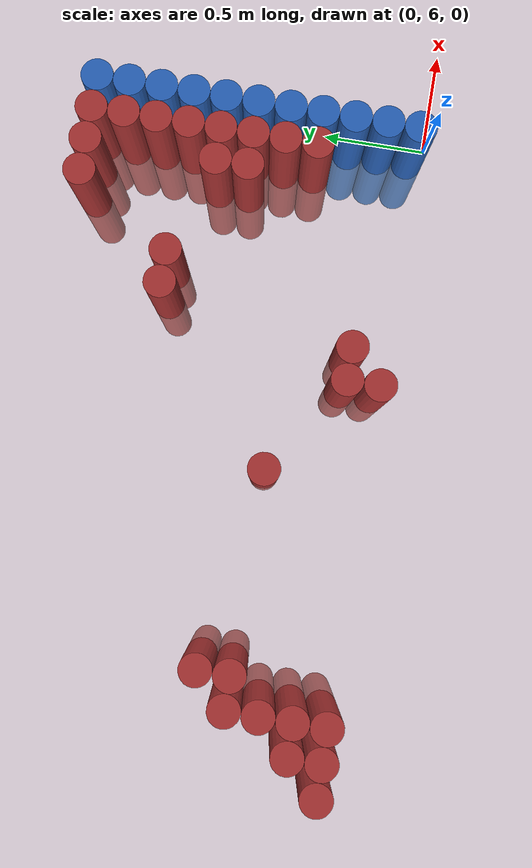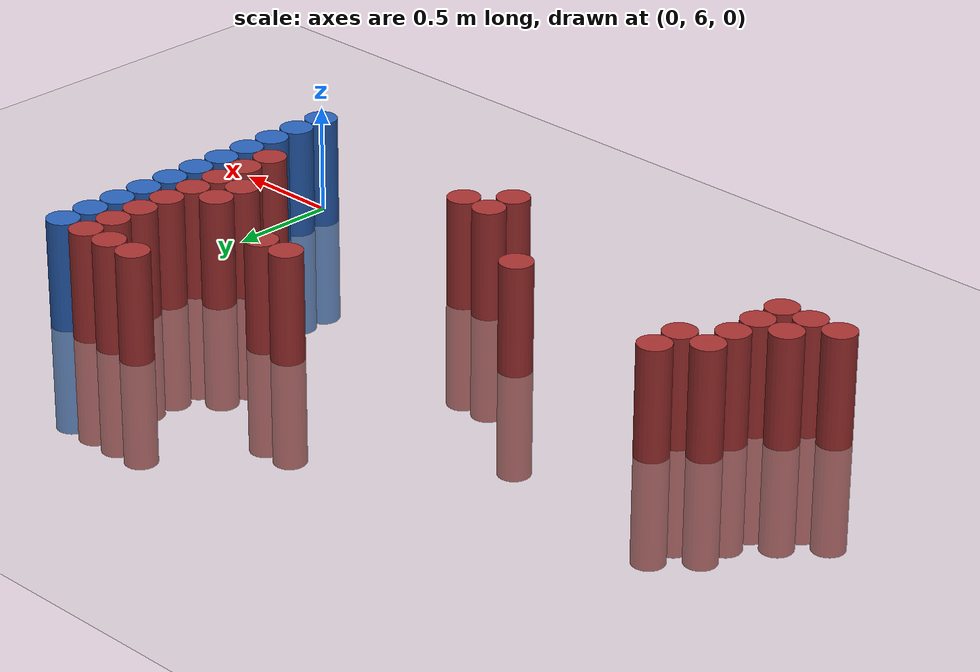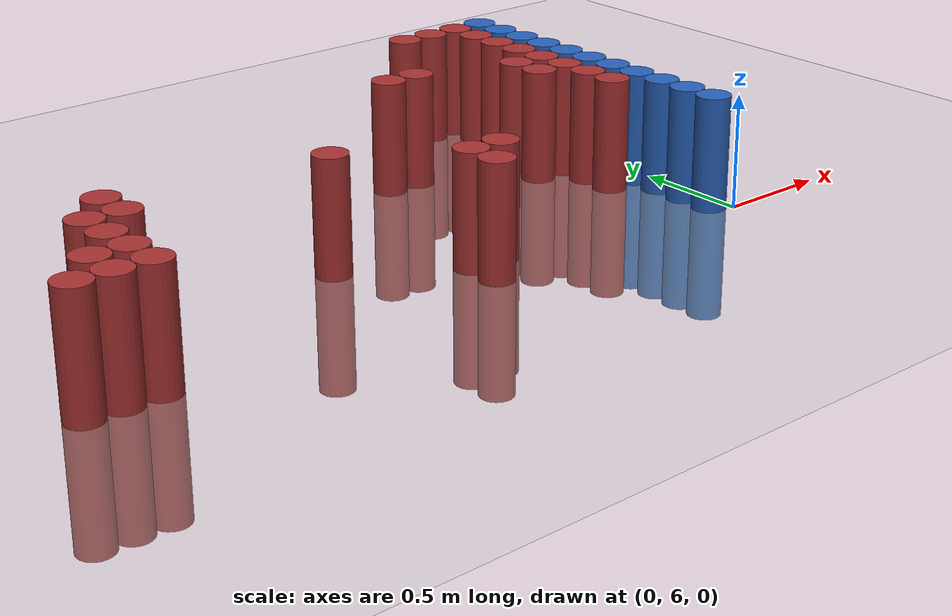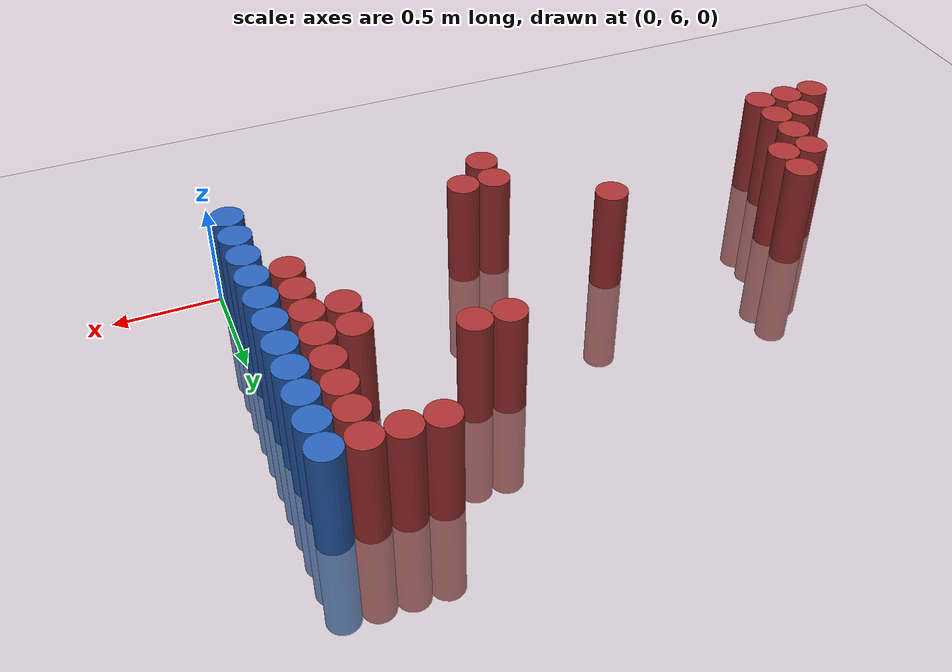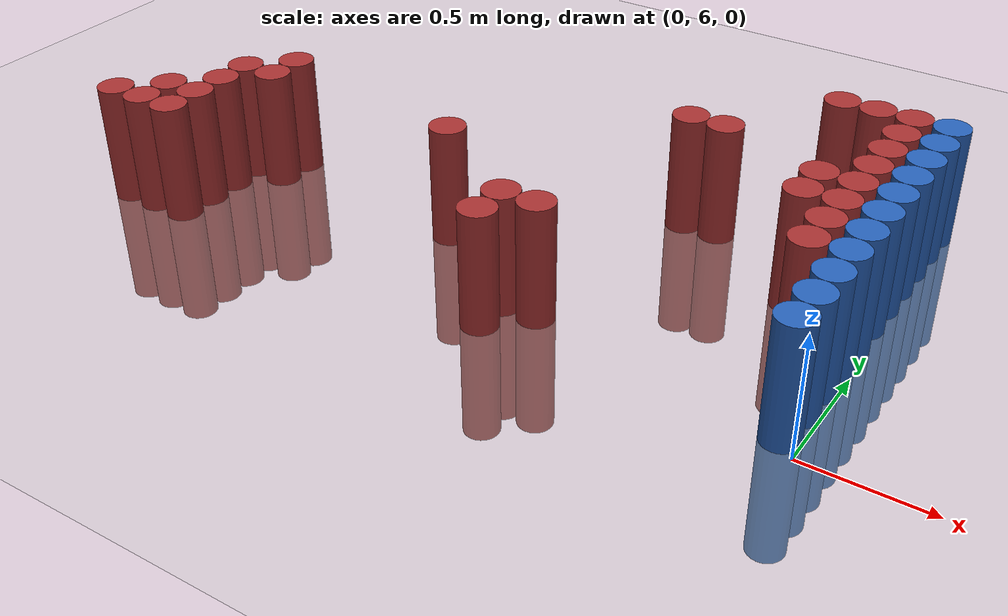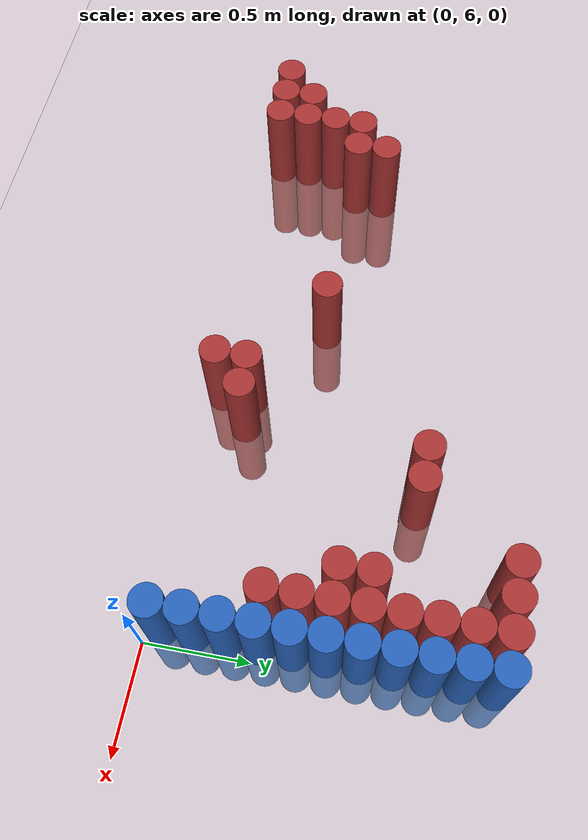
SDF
<sdf version="1.6">
 <world name="default">
  <model name="ground_plane">
   <static>1</static>
   <link name="link">
    <collision name="collision">
     <geometry><plane><normal>0 0 1</normal><size>100 100</size></plane></geometry>
     <surface><friction><ode><mu>100</mu><mu2>50</mu2></ode></friction></surface>
    </collision>
    <visual name="visual">
     <cast_shadows>0</cast_shadows>
     <geometry><plane><normal>0 0 1</normal><size>100 100</size></plane></geometry>
     <material>
      <script><uri>file://media/materials/scripts/gazebo.material</uri><name>Gazebo/Grey</name></script>
     </material>
    </visual>
   </link>
  </model>
  <model name="unit_cylinder_210">
   <static>1</static>
   <pose>-3.075000 6.075000 0.000000 0.000000 0.000000 0.000000</pose>
   <link name="link">
    <inertial>
     <mass>1</mass>
     <inertia><ixx>0.145833</ixx><ixy>0</ixy><ixz>0</ixz><iyy>0.145833</iyy><iyz>0</iyz><izz>0.125</izz></inertia>
    </inertial>
    <collision name="collision">
     <geometry><cylinder><radius>0.075000</radius><length>1</length></cylinder></geometry>
    </collision>
    <visual name="visual">
     <geometry><cylinder><radius>0.075000</radius><length>1</length></cylinder></geometry>
     <material>
      <ambient>0.648000 0.192000 0.192000 1</ambient>
      <diffuse>0.648000 0.192000 0.192000 1</diffuse>
     </material>
     <material>
      <script><name>Gazebo/Grey</name><uri>file://media/materials/scripts/gazebo.material</uri></script>
     </material>
    </visual>
    <sensor name="sensor_contact" type="contact"><contact><collision>collision</collision></contact></sensor>
   </link>
   <plugin filename="gz-sim-touchplugin-system" name="gz::sim::systems::TouchPlugin">
    <target>robot</target>
    <namespace>robot</namespace>
    <time>0.001</time>
    <enabled>true</enabled>
   </plugin>
  </model>
  <model name="unit_cylinder_216">
   <static>1</static>
   <pose>-2.925000 6.075000 0.000000 0.000000 0.000000 0.000000</pose>
   <link name="link">
    <inertial>
     <mass>1</mass>
     <inertia><ixx>0.145833</ixx><ixy>0</ixy><ixz>0</ixz><iyy>0.145833</iyy><iyz>0</iyz><izz>0.125</izz></inertia>
    </inertial>
    <collision name="collision">
     <geometry><cylinder><radius>0.075000</radius><length>1</length></cylinder></geometry>
    </collision>
    <visual name="visual">
     <geometry><cylinder><radius>0.075000</radius><length>1</length></cylinder></geometry>
     <material>
      <ambient>0.648000 0.192000 0.192000 1</ambient>
      <diffuse>0.648000 0.192000 0.192000 1</diffuse>
     </material>
     <material>
      <script><name>Gazebo/Grey</name><uri>file://media/materials/scripts/gazebo.material</uri></script>
     </material>
    </visual>
    <sensor name="sensor_contact" type="contact"><contact><collision>collision</collision></contact></sensor>
   </link>
   <plugin filename="gz-sim-touchplugin-system" name="gz::sim::systems::TouchPlugin">
    <target>robot</target>
    <namespace>robot</namespace>
    <time>0.001</time>
    <enabled>true</enabled>
   </plugin>
  </model>
  <model name="unit_cylinder_217">
   <static>1</static>
   <pose>-2.925000 6.225000 0.000000 0.000000 0.000000 0.000000</pose>
   <link name="link">
    <inertial>
     <mass>1</mass>
     <inertia><ixx>0.145833</ixx><ixy>0</ixy><ixz>0</ixz><iyy>0.145833</iyy><iyz>0</iyz><izz>0.125</izz></inertia>
    </inertial>
    <collision name="collision">
     <geometry><cylinder><radius>0.075000</radius><length>1</length></cylinder></geometry>
    </collision>
    <visual name="visual">
     <geometry><cylinder><radius>0.075000</radius><length>1</length></cylinder></geometry>
     <material>
      <ambient>0.648000 0.192000 0.192000 1</ambient>
      <diffuse>0.648000 0.192000 0.192000 1</diffuse>
     </material>
     <material>
      <script><name>Gazebo/Grey</name><uri>file://media/materials/scripts/gazebo.material</uri></script>
     </material>
    </visual>
    <sensor name="sensor_contact" type="contact"><contact><collision>collision</collision></contact></sensor>
   </link>
   <plugin filename="gz-sim-touchplugin-system" name="gz::sim::systems::TouchPlugin">
    <target>robot</target>
    <namespace>robot</namespace>
    <time>0.001</time>
    <enabled>true</enabled>
   </plugin>
  </model>
  <model name="unit_cylinder_227">
   <static>1</static>
   <pose>-2.775000 6.075000 0.000000 0.000000 0.000000 0.000000</pose>
   <link name="link">
    <inertial>
     <mass>1</mass>
     <inertia><ixx>0.145833</ixx><ixy>0</ixy><ixz>0</ixz><iyy>0.145833</iyy><iyz>0</iyz><izz>0.125</izz></inertia>
    </inertial>
    <collision name="collision">
     <geometry><cylinder><radius>0.075000</radius><length>1</length></cylinder></geometry>
    </collision>
    <visual name="visual">
     <geometry><cylinder><radius>0.075000</radius><length>1</length></cylinder></geometry>
     <material>
      <ambient>0.648000 0.192000 0.192000 1</ambient>
      <diffuse>0.648000 0.192000 0.192000 1</diffuse>
     </material>
     <material>
      <script><name>Gazebo/Grey</name><uri>file://media/materials/scripts/gazebo.material</uri></script>
     </material>
    </visual>
    <sensor name="sensor_contact" type="contact"><contact><collision>collision</collision></contact></sensor>
   </link>
   <plugin filename="gz-sim-touchplugin-system" name="gz::sim::systems::TouchPlugin">
    <target>robot</target>
    <namespace>robot</namespace>
    <time>0.001</time>
    <enabled>true</enabled>
   </plugin>
  </model>
  <model name="unit_cylinder_228">
   <static>1</static>
   <pose>-2.775000 6.225000 0.000000 0.000000 0.000000 0.000000</pose>
   <link name="link">
    <inertial>
     <mass>1</mass>
     <inertia><ixx>0.145833</ixx><ixy>0</ixy><ixz>0</ixz><iyy>0.145833</iyy><iyz>0</iyz><izz>0.125</izz></inertia>
    </inertial>
    <collision name="collision">
     <geometry><cylinder><radius>0.075000</radius><length>1</length></cylinder></geometry>
    </collision>
    <visual name="visual">
     <geometry><cylinder><radius>0.075000</radius><length>1</length></cylinder></geometry>
     <material>
      <ambient>0.648000 0.192000 0.192000 1</ambient>
      <diffuse>0.648000 0.192000 0.192000 1</diffuse>
     </material>
     <material>
      <script><name>Gazebo/Grey</name><uri>file://media/materials/scripts/gazebo.material</uri></script>
     </material>
    </visual>
    <sensor name="sensor_contact" type="contact"><contact><collision>collision</collision></contact></sensor>
   </link>
   <plugin filename="gz-sim-touchplugin-system" name="gz::sim::systems::TouchPlugin">
    <target>robot</target>
    <namespace>robot</namespace>
    <time>0.001</time>
    <enabled>true</enabled>
   </plugin>
  </model>
  <model name="unit_cylinder_229">
   <static>1</static>
   <pose>-2.775000 6.375000 0.000000 0.000000 0.000000 0.000000</pose>
   <link name="link">
    <inertial>
     <mass>1</mass>
     <inertia><ixx>0.145833</ixx><ixy>0</ixy><ixz>0</ixz><iyy>0.145833</iyy><iyz>0</iyz><izz>0.125</izz></inertia>
    </inertial>
    <collision name="collision">
     <geometry><cylinder><radius>0.075000</radius><length>1</length></cylinder></geometry>
    </collision>
    <visual name="visual">
     <geometry><cylinder><radius>0.075000</radius><length>1</length></cylinder></geometry>
     <material>
      <ambient>0.648000 0.192000 0.192000 1</ambient>
      <diffuse>0.648000 0.192000 0.192000 1</diffuse>
     </material>
     <material>
      <script><name>Gazebo/Grey</name><uri>file://media/materials/scripts/gazebo.material</uri></script>
     </material>
    </visual>
    <sensor name="sensor_contact" type="contact"><contact><collision>collision</collision></contact></sensor>
   </link>
   <plugin filename="gz-sim-touchplugin-system" name="gz::sim::systems::TouchPlugin">
    <target>robot</target>
    <namespace>robot</namespace>
    <time>0.001</time>
    <enabled>true</enabled>
   </plugin>
  </model>
  <model name="unit_cylinder_230">
   <static>1</static>
   <pose>-2.775000 6.525000 0.000000 0.000000 0.000000 0.000000</pose>
   <link name="link">
    <inertial>
     <mass>1</mass>
     <inertia><ixx>0.145833</ixx><ixy>0</ixy><ixz>0</ixz><iyy>0.145833</iyy><iyz>0</iyz><izz>0.125</izz></inertia>
    </inertial>
    <collision name="collision">
     <geometry><cylinder><radius>0.075000</radius><length>1</length></cylinder></geometry>
    </collision>
    <visual name="visual">
     <geometry><cylinder><radius>0.075000</radius><length>1</length></cylinder></geometry>
     <material>
      <ambient>0.648000 0.192000 0.192000 1</ambient>
      <diffuse>0.648000 0.192000 0.192000 1</diffuse>
     </material>
     <material>
      <script><name>Gazebo/Grey</name><uri>file://media/materials/scripts/gazebo.material</uri></script>
     </material>
    </visual>
    <sensor name="sensor_contact" type="contact"><contact><collision>collision</collision></contact></sensor>
   </link>
   <plugin filename="gz-sim-touchplugin-system" name="gz::sim::systems::TouchPlugin">
    <target>robot</target>
    <namespace>robot</namespace>
    <time>0.001</time>
    <enabled>true</enabled>
   </plugin>
  </model>
  <model name="unit_cylinder_235">
   <static>1</static>
   <pose>-2.625000 6.525000 0.000000 0.000000 0.000000 0.000000</pose>
   <link name="link">
    <inertial>
     <mass>1</mass>
     <inertia><ixx>0.145833</ixx><ixy>0</ixy><ixz>0</ixz><iyy>0.145833</iyy><iyz>0</iyz><izz>0.125</izz></inertia>
    </inertial>
    <collision name="collision">
     <geometry><cylinder><radius>0.075000</radius><length>1</length></cylinder></geometry>
    </collision>
    <visual name="visual">
     <geometry><cylinder><radius>0.075000</radius><length>1</length></cylinder></geometry>
     <material>
      <ambient>0.648000 0.192000 0.192000 1</ambient>
      <diffuse>0.648000 0.192000 0.192000 1</diffuse>
     </material>
     <material>
      <script><name>Gazebo/Grey</name><uri>file://media/materials/scripts/gazebo.material</uri></script>
     </material>
    </visual>
    <sensor name="sensor_contact" type="contact"><contact><collision>collision</collision></contact></sensor>
   </link>
   <plugin filename="gz-sim-touchplugin-system" name="gz::sim::systems::TouchPlugin">
    <target>robot</target>
    <namespace>robot</namespace>
    <time>0.001</time>
    <enabled>true</enabled>
   </plugin>
  </model>
  <model name="unit_cylinder_236">
   <static>1</static>
   <pose>-2.625000 6.675000 0.000000 0.000000 0.000000 0.000000</pose>
   <link name="link">
    <inertial>
     <mass>1</mass>
     <inertia><ixx>0.145833</ixx><ixy>0</ixy><ixz>0</ixz><iyy>0.145833</iyy><iyz>0</iyz><izz>0.125</izz></inertia>
    </inertial>
    <collision name="collision">
     <geometry><cylinder><radius>0.075000</radius><length>1</length></cylinder></geometry>
    </collision>
    <visual name="visual">
     <geometry><cylinder><radius>0.075000</radius><length>1</length></cylinder></geometry>
     <material>
      <ambient>0.648000 0.192000 0.192000 1</ambient>
      <diffuse>0.648000 0.192000 0.192000 1</diffuse>
     </material>
     <material>
      <script><name>Gazebo/Grey</name><uri>file://media/materials/scripts/gazebo.material</uri></script>
     </material>
    </visual>
    <sensor name="sensor_contact" type="contact"><contact><collision>collision</collision></contact></sensor>
   </link>
   <plugin filename="gz-sim-touchplugin-system" name="gz::sim::systems::TouchPlugin">
    <target>robot</target>
    <namespace>robot</namespace>
    <time>0.001</time>
    <enabled>true</enabled>
   </plugin>
  </model>
  <model name="unit_cylinder_251">
   <static>1</static>
   <pose>-1.725000 6.525000 0.000000 0.000000 0.000000 0.000000</pose>
   <link name="link">
    <inertial>
     <mass>1</mass>
     <inertia><ixx>0.145833</ixx><ixy>0</ixy><ixz>0</ixz><iyy>0.145833</iyy><iyz>0</iyz><izz>0.125</izz></inertia>
    </inertial>
    <collision name="collision">
     <geometry><cylinder><radius>0.075000</radius><length>1</length></cylinder></geometry>
    </collision>
    <visual name="visual">
     <geometry><cylinder><radius>0.075000</radius><length>1</length></cylinder></geometry>
     <material>
      <ambient>0.648000 0.192000 0.192000 1</ambient>
      <diffuse>0.648000 0.192000 0.192000 1</diffuse>
     </material>
     <material>
      <script><name>Gazebo/Grey</name><uri>file://media/materials/scripts/gazebo.material</uri></script>
     </material>
    </visual>
    <sensor name="sensor_contact" type="contact"><contact><collision>collision</collision></contact></sensor>
   </link>
   <plugin filename="gz-sim-touchplugin-system" name="gz::sim::systems::TouchPlugin">
    <target>robot</target>
    <namespace>robot</namespace>
    <time>0.001</time>
    <enabled>true</enabled>
   </plugin>
  </model>
  <model name="unit_cylinder_252">
   <static>1</static>
   <pose>-1.275000 6.075000 0.000000 0.000000 0.000000 0.000000</pose>
   <link name="link">
    <inertial>
     <mass>1</mass>
     <inertia><ixx>0.145833</ixx><ixy>0</ixy><ixz>0</ixz><iyy>0.145833</iyy><iyz>0</iyz><izz>0.125</izz></inertia>
    </inertial>
    <collision name="collision">
     <geometry><cylinder><radius>0.075000</radius><length>1</length></cylinder></geometry>
    </collision>
    <visual name="visual">
     <geometry><cylinder><radius>0.075000</radius><length>1</length></cylinder></geometry>
     <material>
      <ambient>0.648000 0.192000 0.192000 1</ambient>
      <diffuse>0.648000 0.192000 0.192000 1</diffuse>
     </material>
     <material>
      <script><name>Gazebo/Grey</name><uri>file://media/materials/scripts/gazebo.material</uri></script>
     </material>
    </visual>
    <sensor name="sensor_contact" type="contact"><contact><collision>collision</collision></contact></sensor>
   </link>
   <plugin filename="gz-sim-touchplugin-system" name="gz::sim::systems::TouchPlugin">
    <target>robot</target>
    <namespace>robot</namespace>
    <time>0.001</time>
    <enabled>true</enabled>
   </plugin>
  </model>
  <model name="unit_cylinder_253">
   <static>1</static>
   <pose>-1.275000 6.225000 0.000000 0.000000 0.000000 0.000000</pose>
   <link name="link">
    <inertial>
     <mass>1</mass>
     <inertia><ixx>0.145833</ixx><ixy>0</ixy><ixz>0</ixz><iyy>0.145833</iyy><iyz>0</iyz><izz>0.125</izz></inertia>
    </inertial>
    <collision name="collision">
     <geometry><cylinder><radius>0.075000</radius><length>1</length></cylinder></geometry>
    </collision>
    <visual name="visual">
     <geometry><cylinder><radius>0.075000</radius><length>1</length></cylinder></geometry>
     <material>
      <ambient>0.648000 0.192000 0.192000 1</ambient>
      <diffuse>0.648000 0.192000 0.192000 1</diffuse>
     </material>
     <material>
      <script><name>Gazebo/Grey</name><uri>file://media/materials/scripts/gazebo.material</uri></script>
     </material>
    </visual>
    <sensor name="sensor_contact" type="contact"><contact><collision>collision</collision></contact></sensor>
   </link>
   <plugin filename="gz-sim-touchplugin-system" name="gz::sim::systems::TouchPlugin">
    <target>robot</target>
    <namespace>robot</namespace>
    <time>0.001</time>
    <enabled>true</enabled>
   </plugin>
  </model>
  <model name="unit_cylinder_254">
   <static>1</static>
   <pose>-1.125000 6.225000 0.000000 0.000000 0.000000 0.000000</pose>
   <link name="link">
    <inertial>
     <mass>1</mass>
     <inertia><ixx>0.145833</ixx><ixy>0</ixy><ixz>0</ixz><iyy>0.145833</iyy><iyz>0</iyz><izz>0.125</izz></inertia>
    </inertial>
    <collision name="collision">
     <geometry><cylinder><radius>0.075000</radius><length>1</length></cylinder></geometry>
    </collision>
    <visual name="visual">
     <geometry><cylinder><radius>0.075000</radius><length>1</length></cylinder></geometry>
     <material>
      <ambient>0.648000 0.192000 0.192000 1</ambient>
      <diffuse>0.648000 0.192000 0.192000 1</diffuse>
     </material>
     <material>
      <script><name>Gazebo/Grey</name><uri>file://media/materials/scripts/gazebo.material</uri></script>
     </material>
    </visual>
    <sensor name="sensor_contact" type="contact"><contact><collision>collision</collision></contact></sensor>
   </link>
   <plugin filename="gz-sim-touchplugin-system" name="gz::sim::systems::TouchPlugin">
    <target>robot</target>
    <namespace>robot</namespace>
    <time>0.001</time>
    <enabled>true</enabled>
   </plugin>
  </model>
  <model name="unit_cylinder_256">
   <static>1</static>
   <pose>-0.975000 7.125000 0.000000 0.000000 0.000000 0.000000</pose>
   <link name="link">
    <inertial>
     <mass>1</mass>
     <inertia><ixx>0.145833</ixx><ixy>0</ixy><ixz>0</ixz><iyy>0.145833</iyy><iyz>0</iyz><izz>0.125</izz></inertia>
    </inertial>
    <collision name="collision">
     <geometry><cylinder><radius>0.075000</radius><length>1</length></cylinder></geometry>
    </collision>
    <visual name="visual">
     <geometry><cylinder><radius>0.075000</radius><length>1</length></cylinder></geometry>
     <material>
      <ambient>0.648000 0.192000 0.192000 1</ambient>
      <diffuse>0.648000 0.192000 0.192000 1</diffuse>
     </material>
     <material>
      <script><name>Gazebo/Grey</name><uri>file://media/materials/scripts/gazebo.material</uri></script>
     </material>
    </visual>
    <sensor name="sensor_contact" type="contact"><contact><collision>collision</collision></contact></sensor>
   </link>
   <plugin filename="gz-sim-touchplugin-system" name="gz::sim::systems::TouchPlugin">
    <target>robot</target>
    <namespace>robot</namespace>
    <time>0.001</time>
    <enabled>true</enabled>
   </plugin>
  </model>
  <model name="unit_cylinder_259">
   <static>1</static>
   <pose>-0.825000 7.125000 0.000000 0.000000 0.000000 0.000000</pose>
   <link name="link">
    <inertial>
     <mass>1</mass>
     <inertia><ixx>0.145833</ixx><ixy>0</ixy><ixz>0</ixz><iyy>0.145833</iyy><iyz>0</iyz><izz>0.125</izz></inertia>
    </inertial>
    <collision name="collision">
     <geometry><cylinder><radius>0.075000</radius><length>1</length></cylinder></geometry>
    </collision>
    <visual name="visual">
     <geometry><cylinder><radius>0.075000</radius><length>1</length></cylinder></geometry>
     <material>
      <ambient>0.648000 0.192000 0.192000 1</ambient>
      <diffuse>0.648000 0.192000 0.192000 1</diffuse>
     </material>
     <material>
      <script><name>Gazebo/Grey</name><uri>file://media/materials/scripts/gazebo.material</uri></script>
     </material>
    </visual>
    <sensor name="sensor_contact" type="contact"><contact><collision>collision</collision></contact></sensor>
   </link>
   <plugin filename="gz-sim-touchplugin-system" name="gz::sim::systems::TouchPlugin">
    <target>robot</target>
    <namespace>robot</namespace>
    <time>0.001</time>
    <enabled>true</enabled>
   </plugin>
  </model>
  <model name="unit_cylinder_274">
   <static>1</static>
   <pose>-0.525000 7.575000 0.000000 0.000000 0.000000 0.000000</pose>
   <link name="link">
    <inertial>
     <mass>1</mass>
     <inertia><ixx>0.145833</ixx><ixy>0</ixy><ixz>0</ixz><iyy>0.145833</iyy><iyz>0</iyz><izz>0.125</izz></inertia>
    </inertial>
    <collision name="collision">
     <geometry><cylinder><radius>0.075000</radius><length>1</length></cylinder></geometry>
    </collision>
    <visual name="visual">
     <geometry><cylinder><radius>0.075000</radius><length>1</length></cylinder></geometry>
     <material>
      <ambient>0.648000 0.192000 0.192000 1</ambient>
      <diffuse>0.648000 0.192000 0.192000 1</diffuse>
     </material>
     <material>
      <script><name>Gazebo/Grey</name><uri>file://media/materials/scripts/gazebo.material</uri></script>
     </material>
    </visual>
    <sensor name="sensor_contact" type="contact"><contact><collision>collision</collision></contact></sensor>
   </link>
   <plugin filename="gz-sim-touchplugin-system" name="gz::sim::systems::TouchPlugin">
    <target>robot</target>
    <namespace>robot</namespace>
    <time>0.001</time>
    <enabled>true</enabled>
   </plugin>
  </model>
  <model name="unit_cylinder_282">
   <static>1</static>
   <pose>-0.375000 6.825000 0.000000 0.000000 0.000000 0.000000</pose>
   <link name="link">
    <inertial>
     <mass>1</mass>
     <inertia><ixx>0.145833</ixx><ixy>0</ixy><ixz>0</ixz><iyy>0.145833</iyy><iyz>0</iyz><izz>0.125</izz></inertia>
    </inertial>
    <collision name="collision">
     <geometry><cylinder><radius>0.075000</radius><length>1</length></cylinder></geometry>
    </collision>
    <visual name="visual">
     <geometry><cylinder><radius>0.075000</radius><length>1</length></cylinder></geometry>
     <material>
      <ambient>0.648000 0.192000 0.192000 1</ambient>
      <diffuse>0.648000 0.192000 0.192000 1</diffuse>
     </material>
     <material>
      <script><name>Gazebo/Grey</name><uri>file://media/materials/scripts/gazebo.material</uri></script>
     </material>
    </visual>
    <sensor name="sensor_contact" type="contact"><contact><collision>collision</collision></contact></sensor>
   </link>
   <plugin filename="gz-sim-touchplugin-system" name="gz::sim::systems::TouchPlugin">
    <target>robot</target>
    <namespace>robot</namespace>
    <time>0.001</time>
    <enabled>true</enabled>
   </plugin>
  </model>
  <model name="unit_cylinder_283">
   <static>1</static>
   <pose>-0.375000 6.975000 0.000000 0.000000 0.000000 0.000000</pose>
   <link name="link">
    <inertial>
     <mass>1</mass>
     <inertia><ixx>0.145833</ixx><ixy>0</ixy><ixz>0</ixz><iyy>0.145833</iyy><iyz>0</iyz><izz>0.125</izz></inertia>
    </inertial>
    <collision name="collision">
     <geometry><cylinder><radius>0.075000</radius><length>1</length></cylinder></geometry>
    </collision>
    <visual name="visual">
     <geometry><cylinder><radius>0.075000</radius><length>1</length></cylinder></geometry>
     <material>
      <ambient>0.648000 0.192000 0.192000 1</ambient>
      <diffuse>0.648000 0.192000 0.192000 1</diffuse>
     </material>
     <material>
      <script><name>Gazebo/Grey</name><uri>file://media/materials/scripts/gazebo.material</uri></script>
     </material>
    </visual>
    <sensor name="sensor_contact" type="contact"><contact><collision>collision</collision></contact></sensor>
   </link>
   <plugin filename="gz-sim-touchplugin-system" name="gz::sim::systems::TouchPlugin">
    <target>robot</target>
    <namespace>robot</namespace>
    <time>0.001</time>
    <enabled>true</enabled>
   </plugin>
  </model>
  <model name="unit_cylinder_284">
   <static>1</static>
   <pose>-0.375000 7.575000 0.000000 0.000000 0.000000 0.000000</pose>
   <link name="link">
    <inertial>
     <mass>1</mass>
     <inertia><ixx>0.145833</ixx><ixy>0</ixy><ixz>0</ixz><iyy>0.145833</iyy><iyz>0</iyz><izz>0.125</izz></inertia>
    </inertial>
    <collision name="collision">
     <geometry><cylinder><radius>0.075000</radius><length>1</length></cylinder></geometry>
    </collision>
    <visual name="visual">
     <geometry><cylinder><radius>0.075000</radius><length>1</length></cylinder></geometry>
     <material>
      <ambient>0.648000 0.192000 0.192000 1</ambient>
      <diffuse>0.648000 0.192000 0.192000 1</diffuse>
     </material>
     <material>
      <script><name>Gazebo/Grey</name><uri>file://media/materials/scripts/gazebo.material</uri></script>
     </material>
    </visual>
    <sensor name="sensor_contact" type="contact"><contact><collision>collision</collision></contact></sensor>
   </link>
   <plugin filename="gz-sim-touchplugin-system" name="gz::sim::systems::TouchPlugin">
    <target>robot</target>
    <namespace>robot</namespace>
    <time>0.001</time>
    <enabled>true</enabled>
   </plugin>
  </model>
  <model name="unit_cylinder_294">
   <static>1</static>
   <pose>-0.225000 6.525000 0.000000 0.000000 0.000000 0.000000</pose>
   <link name="link">
    <inertial>
     <mass>1</mass>
     <inertia><ixx>0.145833</ixx><ixy>0</ixy><ixz>0</ixz><iyy>0.145833</iyy><iyz>0</iyz><izz>0.125</izz></inertia>
    </inertial>
    <collision name="collision">
     <geometry><cylinder><radius>0.075000</radius><length>1</length></cylinder></geometry>
    </collision>
    <visual name="visual">
     <geometry><cylinder><radius>0.075000</radius><length>1</length></cylinder></geometry>
     <material>
      <ambient>0.648000 0.192000 0.192000 1</ambient>
      <diffuse>0.648000 0.192000 0.192000 1</diffuse>
     </material>
     <material>
      <script><name>Gazebo/Grey</name><uri>file://media/materials/scripts/gazebo.material</uri></script>
     </material>
    </visual>
    <sensor name="sensor_contact" type="contact"><contact><collision>collision</collision></contact></sensor>
   </link>
   <plugin filename="gz-sim-touchplugin-system" name="gz::sim::systems::TouchPlugin">
    <target>robot</target>
    <namespace>robot</namespace>
    <time>0.001</time>
    <enabled>true</enabled>
   </plugin>
  </model>
  <model name="unit_cylinder_295">
   <static>1</static>
   <pose>-0.225000 6.675000 0.000000 0.000000 0.000000 0.000000</pose>
   <link name="link">
    <inertial>
     <mass>1</mass>
     <inertia><ixx>0.145833</ixx><ixy>0</ixy><ixz>0</ixz><iyy>0.145833</iyy><iyz>0</iyz><izz>0.125</izz></inertia>
    </inertial>
    <collision name="collision">
     <geometry><cylinder><radius>0.075000</radius><length>1</length></cylinder></geometry>
    </collision>
    <visual name="visual">
     <geometry><cylinder><radius>0.075000</radius><length>1</length></cylinder></geometry>
     <material>
      <ambient>0.648000 0.192000 0.192000 1</ambient>
      <diffuse>0.648000 0.192000 0.192000 1</diffuse>
     </material>
     <material>
      <script><name>Gazebo/Grey</name><uri>file://media/materials/scripts/gazebo.material</uri></script>
     </material>
    </visual>
    <sensor name="sensor_contact" type="contact"><contact><collision>collision</collision></contact></sensor>
   </link>
   <plugin filename="gz-sim-touchplugin-system" name="gz::sim::systems::TouchPlugin">
    <target>robot</target>
    <namespace>robot</namespace>
    <time>0.001</time>
    <enabled>true</enabled>
   </plugin>
  </model>
  <model name="unit_cylinder_296">
   <static>1</static>
   <pose>-0.225000 6.825000 0.000000 0.000000 0.000000 0.000000</pose>
   <link name="link">
    <inertial>
     <mass>1</mass>
     <inertia><ixx>0.145833</ixx><ixy>0</ixy><ixz>0</ixz><iyy>0.145833</iyy><iyz>0</iyz><izz>0.125</izz></inertia>
    </inertial>
    <collision name="collision">
     <geometry><cylinder><radius>0.075000</radius><length>1</length></cylinder></geometry>
    </collision>
    <visual name="visual">
     <geometry><cylinder><radius>0.075000</radius><length>1</length></cylinder></geometry>
     <material>
      <ambient>0.648000 0.192000 0.192000 1</ambient>
      <diffuse>0.648000 0.192000 0.192000 1</diffuse>
     </material>
     <material>
      <script><name>Gazebo/Grey</name><uri>file://media/materials/scripts/gazebo.material</uri></script>
     </material>
    </visual>
    <sensor name="sensor_contact" type="contact"><contact><collision>collision</collision></contact></sensor>
   </link>
   <plugin filename="gz-sim-touchplugin-system" name="gz::sim::systems::TouchPlugin">
    <target>robot</target>
    <namespace>robot</namespace>
    <time>0.001</time>
    <enabled>true</enabled>
   </plugin>
  </model>
  <model name="unit_cylinder_297">
   <static>1</static>
   <pose>-0.225000 6.975000 0.000000 0.000000 0.000000 0.000000</pose>
   <link name="link">
    <inertial>
     <mass>1</mass>
     <inertia><ixx>0.145833</ixx><ixy>0</ixy><ixz>0</ixz><iyy>0.145833</iyy><iyz>0</iyz><izz>0.125</izz></inertia>
    </inertial>
    <collision name="collision">
     <geometry><cylinder><radius>0.075000</radius><length>1</length></cylinder></geometry>
    </collision>
    <visual name="visual">
     <geometry><cylinder><radius>0.075000</radius><length>1</length></cylinder></geometry>
     <material>
      <ambient>0.648000 0.192000 0.192000 1</ambient>
      <diffuse>0.648000 0.192000 0.192000 1</diffuse>
     </material>
     <material>
      <script><name>Gazebo/Grey</name><uri>file://media/materials/scripts/gazebo.material</uri></script>
     </material>
    </visual>
    <sensor name="sensor_contact" type="contact"><contact><collision>collision</collision></contact></sensor>
   </link>
   <plugin filename="gz-sim-touchplugin-system" name="gz::sim::systems::TouchPlugin">
    <target>robot</target>
    <namespace>robot</namespace>
    <time>0.001</time>
    <enabled>true</enabled>
   </plugin>
  </model>
  <model name="unit_cylinder_298">
   <static>1</static>
   <pose>-0.225000 7.125000 0.000000 0.000000 0.000000 0.000000</pose>
   <link name="link">
    <inertial>
     <mass>1</mass>
     <inertia><ixx>0.145833</ixx><ixy>0</ixy><ixz>0</ixz><iyy>0.145833</iyy><iyz>0</iyz><izz>0.125</izz></inertia>
    </inertial>
    <collision name="collision">
     <geometry><cylinder><radius>0.075000</radius><length>1</length></cylinder></geometry>
    </collision>
    <visual name="visual">
     <geometry><cylinder><radius>0.075000</radius><length>1</length></cylinder></geometry>
     <material>
      <ambient>0.648000 0.192000 0.192000 1</ambient>
      <diffuse>0.648000 0.192000 0.192000 1</diffuse>
     </material>
     <material>
      <script><name>Gazebo/Grey</name><uri>file://media/materials/scripts/gazebo.material</uri></script>
     </material>
    </visual>
    <sensor name="sensor_contact" type="contact"><contact><collision>collision</collision></contact></sensor>
   </link>
   <plugin filename="gz-sim-touchplugin-system" name="gz::sim::systems::TouchPlugin">
    <target>robot</target>
    <namespace>robot</namespace>
    <time>0.001</time>
    <enabled>true</enabled>
   </plugin>
  </model>
  <model name="unit_cylinder_299">
   <static>1</static>
   <pose>-0.225000 7.275000 0.000000 0.000000 0.000000 0.000000</pose>
   <link name="link">
    <inertial>
     <mass>1</mass>
     <inertia><ixx>0.145833</ixx><ixy>0</ixy><ixz>0</ixz><iyy>0.145833</iyy><iyz>0</iyz><izz>0.125</izz></inertia>
    </inertial>
    <collision name="collision">
     <geometry><cylinder><radius>0.075000</radius><length>1</length></cylinder></geometry>
    </collision>
    <visual name="visual">
     <geometry><cylinder><radius>0.075000</radius><length>1</length></cylinder></geometry>
     <material>
      <ambient>0.648000 0.192000 0.192000 1</ambient>
      <diffuse>0.648000 0.192000 0.192000 1</diffuse>
     </material>
     <material>
      <script><name>Gazebo/Grey</name><uri>file://media/materials/scripts/gazebo.material</uri></script>
     </material>
    </visual>
    <sensor name="sensor_contact" type="contact"><contact><collision>collision</collision></contact></sensor>
   </link>
   <plugin filename="gz-sim-touchplugin-system" name="gz::sim::systems::TouchPlugin">
    <target>robot</target>
    <namespace>robot</namespace>
    <time>0.001</time>
    <enabled>true</enabled>
   </plugin>
  </model>
  <model name="unit_cylinder_300">
   <static>1</static>
   <pose>-0.225000 7.425000 0.000000 0.000000 0.000000 0.000000</pose>
   <link name="link">
    <inertial>
     <mass>1</mass>
     <inertia><ixx>0.145833</ixx><ixy>0</ixy><ixz>0</ixz><iyy>0.145833</iyy><iyz>0</iyz><izz>0.125</izz></inertia>
    </inertial>
    <collision name="collision">
     <geometry><cylinder><radius>0.075000</radius><length>1</length></cylinder></geometry>
    </collision>
    <visual name="visual">
     <geometry><cylinder><radius>0.075000</radius><length>1</length></cylinder></geometry>
     <material>
      <ambient>0.648000 0.192000 0.192000 1</ambient>
      <diffuse>0.648000 0.192000 0.192000 1</diffuse>
     </material>
     <material>
      <script><name>Gazebo/Grey</name><uri>file://media/materials/scripts/gazebo.material</uri></script>
     </material>
    </visual>
    <sensor name="sensor_contact" type="contact"><contact><collision>collision</collision></contact></sensor>
   </link>
   <plugin filename="gz-sim-touchplugin-system" name="gz::sim::systems::TouchPlugin">
    <target>robot</target>
    <namespace>robot</namespace>
    <time>0.001</time>
    <enabled>true</enabled>
   </plugin>
  </model>
  <model name="unit_cylinder_301">
   <static>1</static>
   <pose>-0.225000 7.575000 0.000000 0.000000 0.000000 0.000000</pose>
   <link name="link">
    <inertial>
     <mass>1</mass>
     <inertia><ixx>0.145833</ixx><ixy>0</ixy><ixz>0</ixz><iyy>0.145833</iyy><iyz>0</iyz><izz>0.125</izz></inertia>
    </inertial>
    <collision name="collision">
     <geometry><cylinder><radius>0.075000</radius><length>1</length></cylinder></geometry>
    </collision>
    <visual name="visual">
     <geometry><cylinder><radius>0.075000</radius><length>1</length></cylinder></geometry>
     <material>
      <ambient>0.648000 0.192000 0.192000 1</ambient>
      <diffuse>0.648000 0.192000 0.192000 1</diffuse>
     </material>
     <material>
      <script><name>Gazebo/Grey</name><uri>file://media/materials/scripts/gazebo.material</uri></script>
     </material>
    </visual>
    <sensor name="sensor_contact" type="contact"><contact><collision>collision</collision></contact></sensor>
   </link>
   <plugin filename="gz-sim-touchplugin-system" name="gz::sim::systems::TouchPlugin">
    <target>robot</target>
    <namespace>robot</namespace>
    <time>0.001</time>
    <enabled>true</enabled>
   </plugin>
  </model>
  <model name="unit_cylinder_314">
   <static>1</static>
   <pose>-0.075000 6.075000 0.000000 0.000000 0.000000 0.000000</pose>
   <link name="link">
    <inertial>
     <mass>1</mass>
     <inertia><ixx>0.145833</ixx><ixy>0</ixy><ixz>0</ixz><iyy>0.145833</iyy><iyz>0</iyz><izz>0.125</izz></inertia>
    </inertial>
    <collision name="collision">
     <geometry><cylinder><radius>0.075000</radius><length>1</length></cylinder></geometry>
    </collision>
    <visual name="visual">
     <geometry><cylinder><radius>0.075000</radius><length>1</length></cylinder></geometry>
     <material>
      <ambient>0.152000 0.379000 0.720000 1</ambient>
      <diffuse>0.152000 0.379000 0.720000 1</diffuse>
     </material>
     <material>
      <script><name>Gazebo/Grey</name><uri>file://media/materials/scripts/gazebo.material</uri></script>
     </material>
    </visual>
    <sensor name="sensor_contact" type="contact"><contact><collision>collision</collision></contact></sensor>
   </link>
   <plugin filename="gz-sim-touchplugin-system" name="gz::sim::systems::TouchPlugin">
    <target>robot</target>
    <namespace>robot</namespace>
    <time>0.001</time>
    <enabled>true</enabled>
   </plugin>
  </model>
  <model name="unit_cylinder_315">
   <static>1</static>
   <pose>-0.075000 6.225000 0.000000 0.000000 0.000000 0.000000</pose>
   <link name="link">
    <inertial>
     <mass>1</mass>
     <inertia><ixx>0.145833</ixx><ixy>0</ixy><ixz>0</ixz><iyy>0.145833</iyy><iyz>0</iyz><izz>0.125</izz></inertia>
    </inertial>
    <collision name="collision">
     <geometry><cylinder><radius>0.075000</radius><length>1</length></cylinder></geometry>
    </collision>
    <visual name="visual">
     <geometry><cylinder><radius>0.075000</radius><length>1</length></cylinder></geometry>
     <material>
      <ambient>0.152000 0.379000 0.720000 1</ambient>
      <diffuse>0.152000 0.379000 0.720000 1</diffuse>
     </material>
     <material>
      <script><name>Gazebo/Grey</name><uri>file://media/materials/scripts/gazebo.material</uri></script>
     </material>
    </visual>
    <sensor name="sensor_contact" type="contact"><contact><collision>collision</collision></contact></sensor>
   </link>
   <plugin filename="gz-sim-touchplugin-system" name="gz::sim::systems::TouchPlugin">
    <target>robot</target>
    <namespace>robot</namespace>
    <time>0.001</time>
    <enabled>true</enabled>
   </plugin>
  </model>
  <model name="unit_cylinder_316">
   <static>1</static>
   <pose>-0.075000 6.375000 0.000000 0.000000 0.000000 0.000000</pose>
   <link name="link">
    <inertial>
     <mass>1</mass>
     <inertia><ixx>0.145833</ixx><ixy>0</ixy><ixz>0</ixz><iyy>0.145833</iyy><iyz>0</iyz><izz>0.125</izz></inertia>
    </inertial>
    <collision name="collision">
     <geometry><cylinder><radius>0.075000</radius><length>1</length></cylinder></geometry>
    </collision>
    <visual name="visual">
     <geometry><cylinder><radius>0.075000</radius><length>1</length></cylinder></geometry>
     <material>
      <ambient>0.152000 0.379000 0.720000 1</ambient>
      <diffuse>0.152000 0.379000 0.720000 1</diffuse>
     </material>
     <material>
      <script><name>Gazebo/Grey</name><uri>file://media/materials/scripts/gazebo.material</uri></script>
     </material>
    </visual>
    <sensor name="sensor_contact" type="contact"><contact><collision>collision</collision></contact></sensor>
   </link>
   <plugin filename="gz-sim-touchplugin-system" name="gz::sim::systems::TouchPlugin">
    <target>robot</target>
    <namespace>robot</namespace>
    <time>0.001</time>
    <enabled>true</enabled>
   </plugin>
  </model>
  <model name="unit_cylinder_317">
   <static>1</static>
   <pose>-0.075000 6.525000 0.000000 0.000000 0.000000 0.000000</pose>
   <link name="link">
    <inertial>
     <mass>1</mass>
     <inertia><ixx>0.145833</ixx><ixy>0</ixy><ixz>0</ixz><iyy>0.145833</iyy><iyz>0</iyz><izz>0.125</izz></inertia>
    </inertial>
    <collision name="collision">
     <geometry><cylinder><radius>0.075000</radius><length>1</length></cylinder></geometry>
    </collision>
    <visual name="visual">
     <geometry><cylinder><radius>0.075000</radius><length>1</length></cylinder></geometry>
     <material>
      <ambient>0.152000 0.379000 0.720000 1</ambient>
      <diffuse>0.152000 0.379000 0.720000 1</diffuse>
     </material>
     <material>
      <script><name>Gazebo/Grey</name><uri>file://media/materials/scripts/gazebo.material</uri></script>
     </material>
    </visual>
    <sensor name="sensor_contact" type="contact"><contact><collision>collision</collision></contact></sensor>
   </link>
   <plugin filename="gz-sim-touchplugin-system" name="gz::sim::systems::TouchPlugin">
    <target>robot</target>
    <namespace>robot</namespace>
    <time>0.001</time>
    <enabled>true</enabled>
   </plugin>
  </model>
  <model name="unit_cylinder_318">
   <static>1</static>
   <pose>-0.075000 6.675000 0.000000 0.000000 0.000000 0.000000</pose>
   <link name="link">
    <inertial>
     <mass>1</mass>
     <inertia><ixx>0.145833</ixx><ixy>0</ixy><ixz>0</ixz><iyy>0.145833</iyy><iyz>0</iyz><izz>0.125</izz></inertia>
    </inertial>
    <collision name="collision">
     <geometry><cylinder><radius>0.075000</radius><length>1</length></cylinder></geometry>
    </collision>
    <visual name="visual">
     <geometry><cylinder><radius>0.075000</radius><length>1</length></cylinder></geometry>
     <material>
      <ambient>0.152000 0.379000 0.720000 1</ambient>
      <diffuse>0.152000 0.379000 0.720000 1</diffuse>
     </material>
     <material>
      <script><name>Gazebo/Grey</name><uri>file://media/materials/scripts/gazebo.material</uri></script>
     </material>
    </visual>
    <sensor name="sensor_contact" type="contact"><contact><collision>collision</collision></contact></sensor>
   </link>
   <plugin filename="gz-sim-touchplugin-system" name="gz::sim::systems::TouchPlugin">
    <target>robot</target>
    <namespace>robot</namespace>
    <time>0.001</time>
    <enabled>true</enabled>
   </plugin>
  </model>
  <model name="unit_cylinder_319">
   <static>1</static>
   <pose>-0.075000 6.825000 0.000000 0.000000 0.000000 0.000000</pose>
   <link name="link">
    <inertial>
     <mass>1</mass>
     <inertia><ixx>0.145833</ixx><ixy>0</ixy><ixz>0</ixz><iyy>0.145833</iyy><iyz>0</iyz><izz>0.125</izz></inertia>
    </inertial>
    <collision name="collision">
     <geometry><cylinder><radius>0.075000</radius><length>1</length></cylinder></geometry>
    </collision>
    <visual name="visual">
     <geometry><cylinder><radius>0.075000</radius><length>1</length></cylinder></geometry>
     <material>
      <ambient>0.152000 0.379000 0.720000 1</ambient>
      <diffuse>0.152000 0.379000 0.720000 1</diffuse>
     </material>
     <material>
      <script><name>Gazebo/Grey</name><uri>file://media/materials/scripts/gazebo.material</uri></script>
     </material>
    </visual>
    <sensor name="sensor_contact" type="contact"><contact><collision>collision</collision></contact></sensor>
   </link>
   <plugin filename="gz-sim-touchplugin-system" name="gz::sim::systems::TouchPlugin">
    <target>robot</target>
    <namespace>robot</namespace>
    <time>0.001</time>
    <enabled>true</enabled>
   </plugin>
  </model>
  <model name="unit_cylinder_320">
   <static>1</static>
   <pose>-0.075000 6.975000 0.000000 0.000000 0.000000 0.000000</pose>
   <link name="link">
    <inertial>
     <mass>1</mass>
     <inertia><ixx>0.145833</ixx><ixy>0</ixy><ixz>0</ixz><iyy>0.145833</iyy><iyz>0</iyz><izz>0.125</izz></inertia>
    </inertial>
    <collision name="collision">
     <geometry><cylinder><radius>0.075000</radius><length>1</length></cylinder></geometry>
    </collision>
    <visual name="visual">
     <geometry><cylinder><radius>0.075000</radius><length>1</length></cylinder></geometry>
     <material>
      <ambient>0.152000 0.379000 0.720000 1</ambient>
      <diffuse>0.152000 0.379000 0.720000 1</diffuse>
     </material>
     <material>
      <script><name>Gazebo/Grey</name><uri>file://media/materials/scripts/gazebo.material</uri></script>
     </material>
    </visual>
    <sensor name="sensor_contact" type="contact"><contact><collision>collision</collision></contact></sensor>
   </link>
   <plugin filename="gz-sim-touchplugin-system" name="gz::sim::systems::TouchPlugin">
    <target>robot</target>
    <namespace>robot</namespace>
    <time>0.001</time>
    <enabled>true</enabled>
   </plugin>
  </model>
  <model name="unit_cylinder_321">
   <static>1</static>
   <pose>-0.075000 7.125000 0.000000 0.000000 0.000000 0.000000</pose>
   <link name="link">
    <inertial>
     <mass>1</mass>
     <inertia><ixx>0.145833</ixx><ixy>0</ixy><ixz>0</ixz><iyy>0.145833</iyy><iyz>0</iyz><izz>0.125</izz></inertia>
    </inertial>
    <collision name="collision">
     <geometry><cylinder><radius>0.075000</radius><length>1</length></cylinder></geometry>
    </collision>
    <visual name="visual">
     <geometry><cylinder><radius>0.075000</radius><length>1</length></cylinder></geometry>
     <material>
      <ambient>0.152000 0.379000 0.720000 1</ambient>
      <diffuse>0.152000 0.379000 0.720000 1</diffuse>
     </material>
     <material>
      <script><name>Gazebo/Grey</name><uri>file://media/materials/scripts/gazebo.material</uri></script>
     </material>
    </visual>
    <sensor name="sensor_contact" type="contact"><contact><collision>collision</collision></contact></sensor>
   </link>
   <plugin filename="gz-sim-touchplugin-system" name="gz::sim::systems::TouchPlugin">
    <target>robot</target>
    <namespace>robot</namespace>
    <time>0.001</time>
    <enabled>true</enabled>
   </plugin>
  </model>
  <model name="unit_cylinder_322">
   <static>1</static>
   <pose>-0.075000 7.275000 0.000000 0.000000 0.000000 0.000000</pose>
   <link name="link">
    <inertial>
     <mass>1</mass>
     <inertia><ixx>0.145833</ixx><ixy>0</ixy><ixz>0</ixz><iyy>0.145833</iyy><iyz>0</iyz><izz>0.125</izz></inertia>
    </inertial>
    <collision name="collision">
     <geometry><cylinder><radius>0.075000</radius><length>1</length></cylinder></geometry>
    </collision>
    <visual name="visual">
     <geometry><cylinder><radius>0.075000</radius><length>1</length></cylinder></geometry>
     <material>
      <ambient>0.152000 0.379000 0.720000 1</ambient>
      <diffuse>0.152000 0.379000 0.720000 1</diffuse>
     </material>
     <material>
      <script><name>Gazebo/Grey</name><uri>file://media/materials/scripts/gazebo.material</uri></script>
     </material>
    </visual>
    <sensor name="sensor_contact" type="contact"><contact><collision>collision</collision></contact></sensor>
   </link>
   <plugin filename="gz-sim-touchplugin-system" name="gz::sim::systems::TouchPlugin">
    <target>robot</target>
    <namespace>robot</namespace>
    <time>0.001</time>
    <enabled>true</enabled>
   </plugin>
  </model>
  <model name="unit_cylinder_323">
   <static>1</static>
   <pose>-0.075000 7.425000 0.000000 0.000000 0.000000 0.000000</pose>
   <link name="link">
    <inertial>
     <mass>1</mass>
     <inertia><ixx>0.145833</ixx><ixy>0</ixy><ixz>0</ixz><iyy>0.145833</iyy><iyz>0</iyz><izz>0.125</izz></inertia>
    </inertial>
    <collision name="collision">
     <geometry><cylinder><radius>0.075000</radius><length>1</length></cylinder></geometry>
    </collision>
    <visual name="visual">
     <geometry><cylinder><radius>0.075000</radius><length>1</length></cylinder></geometry>
     <material>
      <ambient>0.152000 0.379000 0.720000 1</ambient>
      <diffuse>0.152000 0.379000 0.720000 1</diffuse>
     </material>
     <material>
      <script><name>Gazebo/Grey</name><uri>file://media/materials/scripts/gazebo.material</uri></script>
     </material>
    </visual>
    <sensor name="sensor_contact" type="contact"><contact><collision>collision</collision></contact></sensor>
   </link>
   <plugin filename="gz-sim-touchplugin-system" name="gz::sim::systems::TouchPlugin">
    <target>robot</target>
    <namespace>robot</namespace>
    <time>0.001</time>
    <enabled>true</enabled>
   </plugin>
  </model>
  <model name="unit_cylinder_324">
   <static>1</static>
   <pose>-0.075000 7.575000 0.000000 0.000000 0.000000 0.000000</pose>
   <link name="link">
    <inertial>
     <mass>1</mass>
     <inertia><ixx>0.145833</ixx><ixy>0</ixy><ixz>0</ixz><iyy>0.145833</iyy><iyz>0</iyz><izz>0.125</izz></inertia>
    </inertial>
    <collision name="collision">
     <geometry><cylinder><radius>0.075000</radius><length>1</length></cylinder></geometry>
    </collision>
    <visual name="visual">
     <geometry><cylinder><radius>0.075000</radius><length>1</length></cylinder></geometry>
     <material>
      <ambient>0.152000 0.379000 0.720000 1</ambient>
      <diffuse>0.152000 0.379000 0.720000 1</diffuse>
     </material>
     <material>
      <script><name>Gazebo/Grey</name><uri>file://media/materials/scripts/gazebo.material</uri></script>
     </material>
    </visual>
    <sensor name="sensor_contact" type="contact"><contact><collision>collision</collision></contact></sensor>
   </link>
   <plugin filename="gz-sim-touchplugin-system" name="gz::sim::systems::TouchPlugin">
    <target>robot</target>
    <namespace>robot</namespace>
    <time>0.001</time>
    <enabled>true</enabled>
   </plugin>
  </model>
 </world>
</sdf>
